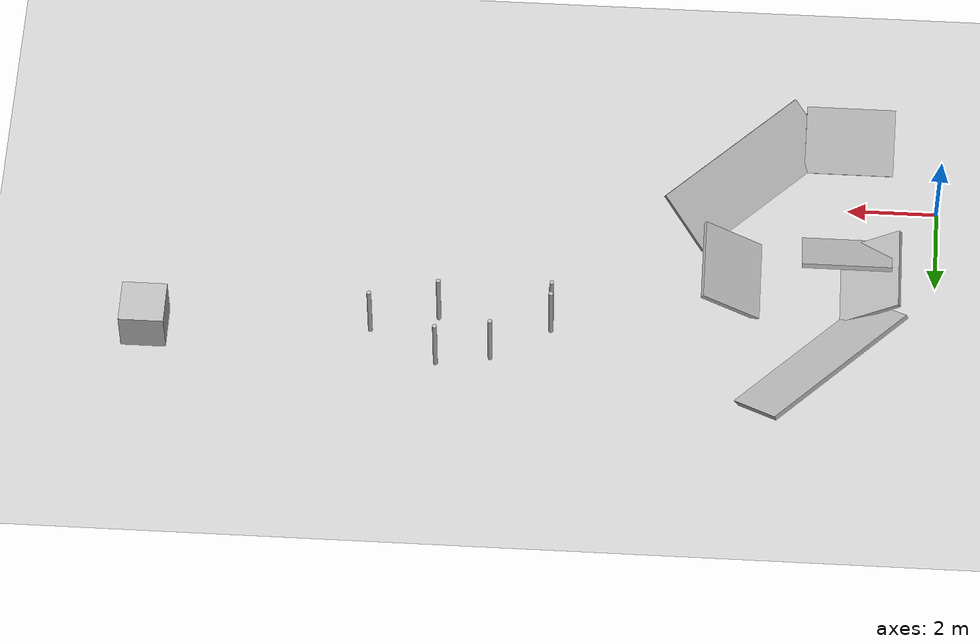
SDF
<sdf version="1.4">
 <world name="default">
  <include><uri>model://ground_plane</uri></include>
  <include><uri>model://sun</uri></include>
  <include><static>true</static><uri>model://gazebo_worlds_cdt/models/funnel_left</uri></include>
  <include>
   <static>true</static>
   <pose>3 1 0 0 0 1.571</pose>
   <uri>model://gazebo_worlds_cdt/models/funnel_right</uri>
  </include>
  <include>
   <static>true</static>
   <pose>17.5 4 0.5 0 0 0</pose>
   <uri>model://gazebo_worlds_cdt/models/april_box_16h5</uri>
  </include>
  <include>
   <static>true</static>
   <pose>8 4 0 0 0 0</pose>
   <scale>0.5</scale>
   <uri>model://gazebo_worlds_cdt/models/obstacle_course</uri>
  </include>
 </world>
</sdf>

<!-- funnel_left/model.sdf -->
<sdf version="1.4">
    <model name="funnel_left">
      <pose>1.0 0.0 0.2 0 0 0</pose>
      <static>true</static>
      <link name="right1">
        <visual name="box_visual">
          <pose>1 -1.55 0.35 1 0 0</pose>
          <geometry>
          <mesh>
            <uri>model://gazebo_worlds_cdt/models/grass_box/meshes/grass_box.dae</uri>
            <scale>2 0.1 1.5</scale>
          </mesh>
          </geometry>
        </visual>
        <collision name="box_collision">
          <pose>1 -1.55 0.35 1 0 0</pose>
          <geometry>
            <box>
              <size>2 0.1 1.5</size>
            </box>
          </geometry>
        </collision>
      </link>
      <link name="left1">
        <visual name="box_visual">
          <pose>1 1.55 0.35 -1 0 0</pose>
          <geometry>
          <mesh>
            <uri>model://gazebo_worlds_cdt/models/grass_box/meshes/grass_box.dae</uri>
            <scale>2 0.1 1.5</scale>
          </mesh>
          </geometry>
        </visual>
        <collision name="box_collision">
          <pose>1 1.55 0.35 -1 0 0</pose>
          <geometry>
            <box>
              <size>2 0.1 1.5</size>
            </box>
          </geometry>
        </collision>
      </link>

      <link name="right2">
        <visual name="box_visual">
          <pose>3.25 -0.5 0.35 1 0 0.7855</pose>
          <geometry>
          <mesh>
            <uri>model://gazebo_worlds_cdt/models/grass_box/meshes/grass_box.dae</uri>
            <scale>4 0.1 1.5</scale>
          </mesh>
          </geometry>
        </visual>
        <collision name="box_collision">
          <pose>3.25 -0.5 0.35 1 0 0.7855</pose>
          <geometry>
            <box>
              <size>4 0.1 1.5</size>
            </box>
          </geometry>
        </collision>
      </link>
    </model>
</sdf>

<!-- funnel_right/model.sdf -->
<sdf version="1.4">
    <model name="funnel_right">
      <pose>1.0 0.0 0.2 0 0 0</pose>
      <static>true</static>
      <link name="right1">
        <visual name="box_visual">
          <pose>1 -1.55 0.35 1 0 0</pose>
          <geometry>
          <mesh>
            <uri>model://gazebo_worlds_cdt/models/grass_box/meshes/grass_box.dae</uri>
            <scale>2 0.1 1.5</scale>
          </mesh>
          </geometry>
        </visual>
        <collision name="box_collision">
          <pose>1 -1.55 0.35 1 0 0</pose>
          <geometry>
            <box>
              <size>2 0.1 1.5</size>
            </box>
          </geometry>
        </collision>
      </link>
      <link name="left1">
        <visual name="box_visual">
          <pose>1 1.55 0.35 -1 0 0</pose>
          <geometry>
          <mesh>
            <uri>model://gazebo_worlds_cdt/models/grass_box/meshes/grass_box.dae</uri>
            <scale>2 0.1 1.5</scale>
          </mesh>
          </geometry>
        </visual>
        <collision name="box_collision">
          <pose>1 1.55 0.35 -1 0 0</pose>
          <geometry>
            <box>
              <size>2 0.1 1.5</size>
            </box>
          </geometry>
        </collision>
      </link>

      <link name="left2">
        <visual name="box_visual">
          <pose>3.25 0.5 0.35 -1 0 -0.7855</pose>
          <geometry>
          <mesh>
            <uri>model://gazebo_worlds_cdt/models/grass_box/meshes/grass_box.dae</uri>
            <scale>4 0.1 1.5</scale>
          </mesh>
          </geometry>
        </visual>
        <collision name="box_collision">
          <pose>3.25 0.5 0.35 -1 0 -0.7855</pose>
          <geometry>
            <box>
              <size>4 0.1 1.5</size>
            </box>
          </geometry>
        </collision>
      </link>
    </model>
</sdf>

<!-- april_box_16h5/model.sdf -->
<sdf version="1.4">
  <model name="april_box_16h5">
    <pose>0 0 0 0 0 0</pose>
    <static>true</static>
    <link name="april_tag_16h5_link">

      <collision name="april_tag_16h5_collision">
        <pose>0 0 0 0 0 0</pose>
        <geometry>
          <mesh>
            <uri>model://gazebo_worlds_cdt/models/april_box_16h5/meshes/april_box_16h5.dae</uri>
          </mesh>
        </geometry>
      </collision>

      <visual name="april_tag_16h5_visual">
        <pose>0 0 0 0 0 0</pose>
        <geometry>
          <mesh>
            <uri>model://gazebo_worlds_cdt/models/april_box_16h5/meshes/april_box_16h5.dae</uri>
          </mesh>
        </geometry>
      </visual>

    </link>
  </model>
</sdf>

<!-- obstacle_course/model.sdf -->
<sdf version="1.4">
  <model name="obstacle_course">
    <pose>0 0 0 0 0 0</pose>
    <static>true</static>
    <link name="cylinder06">
      <pose>3 0.6 0.736 0.0 -0.0 0.0</pose>
      <collision name="collision">
        <geometry>
          <cylinder>
            <radius>0.0500</radius>
            <length>1.4800</length>
          </cylinder>
        </geometry>
      </collision>
      <visual name="visual">
        <geometry>
          <cylinder>
            <radius>0.0500</radius>
            <length>1.4800</length>
          </cylinder>
        </geometry>
        <material/>
      </visual>
    </link>
    <link name="cylinder03">
      <pose>3 -0.6 0.736 0.0 -0.0 0.0</pose>
      <collision name="collision">
        <geometry>
          <cylinder>
            <radius>0.0500</radius>
            <length>1.4800</length>
          </cylinder>
        </geometry>
      </collision>
      <visual name="visual">
        <geometry>
          <cylinder>
            <radius>0.0500</radius>
            <length>1.4800</length>
          </cylinder>
        </geometry>
        <material/>
      </visual>
    </link>
    <link name="cylinder09">
      <pose>4.5 -0.2 0.736 0.0 -0.0 0.0</pose>
      <collision name="collision">
        <geometry>
          <cylinder>
            <radius>0.0500</radius>
            <length>1.4800</length>
          </cylinder>
        </geometry>
      </collision>
      <visual name="visual">
        <geometry>
          <cylinder>
            <radius>0.0500</radius>
            <length>1.4800</length>
          </cylinder>
        </geometry>
        <material/>
      </visual>
    </link>
    <link name="cylinder01">
      <pose>1.8 0.4 0.736 0.0 -0.0 0.0</pose>
      <collision name="collision">
        <geometry>
          <cylinder>
            <radius>0.0500</radius>
            <length>1.4800</length>
          </cylinder>
        </geometry>
      </collision>
      <visual name="visual">
        <geometry>
          <cylinder>
            <radius>0.0500</radius>
            <length>1.4800</length>
          </cylinder>
        </geometry>
        <material/>
      </visual>
    </link>
    <link name="cylinder02">
      <pose>0.5 -0.7 0.736 0.0 -0.0 0.0</pose>
      <collision name="collision">
        <geometry>
          <cylinder>
            <radius>0.0500</radius>
            <length>1.4800</length>
          </cylinder>
        </geometry>
      </collision>
      <visual name="visual">
        <geometry>
          <cylinder>
            <radius>0.0500</radius>
            <length>1.4800</length>
          </cylinder>
        </geometry>
        <material/>
      </visual>
    </link>
    <link name="cylinder021">
      <pose>0.5 -0.4 0.736 0.0 -0.0 0.0</pose>
      <collision name="collision">
        <geometry>
          <cylinder>
            <radius>0.0500</radius>
            <length>1.4800</length>
          </cylinder>
        </geometry>
      </collision>
      <visual name="visual">
        <geometry>
          <cylinder>
            <radius>0.0500</radius>
            <length>1.4800</length>
          </cylinder>
        </geometry>
        <material/>
      </visual>
    </link>
  </model>
</sdf>
